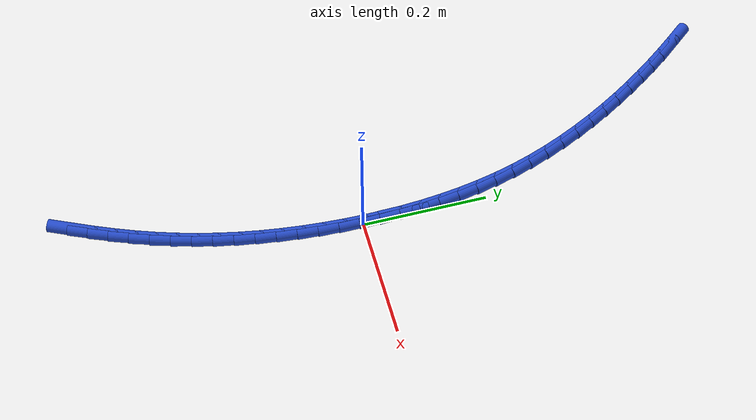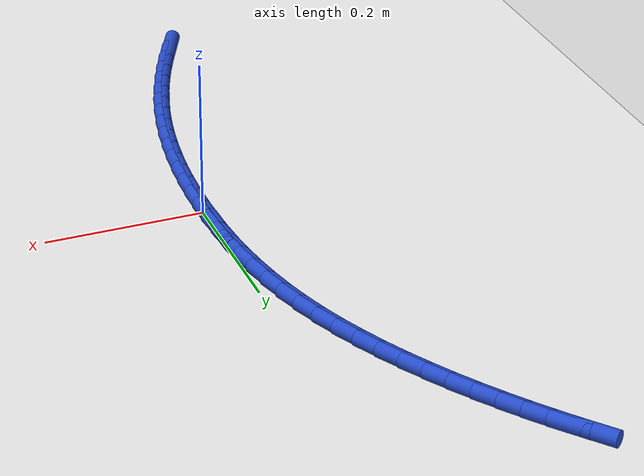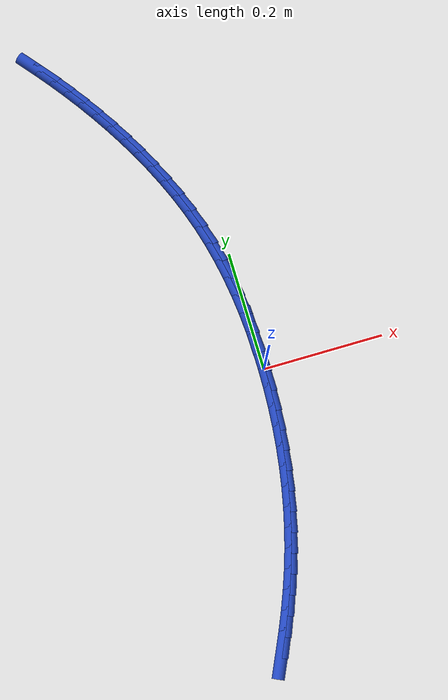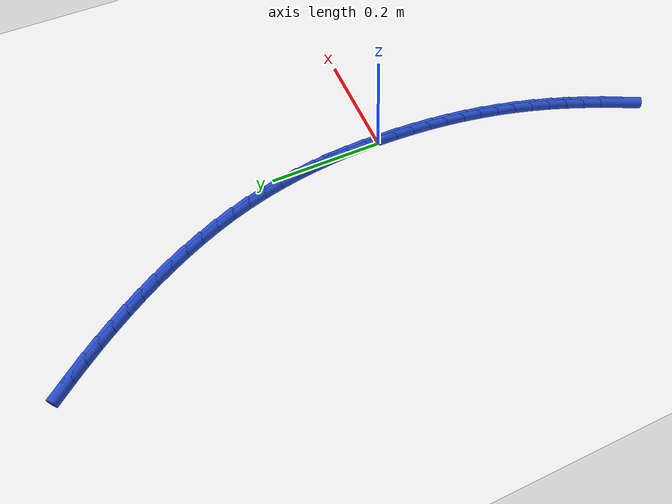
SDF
<sdf version="1.6">
 <world name="default">
  <model name="ground_plane">
   <static>1</static>
   <link name="link">
    <collision name="collision">
     <geometry><plane><normal>0 0 1</normal><size>100 100</size></plane></geometry>
     <surface><friction><ode><mu>100</mu><mu2>50</mu2></ode></friction></surface>
    </collision>
    <visual name="visual">
     <cast_shadows>0</cast_shadows>
     <geometry><plane><normal>0 0 1</normal><size>100 100</size></plane></geometry>
     <material>
      <script><uri>file://media/materials/scripts/gazebo.material</uri><name>Gazebo/WhiteGlow</name></script>
     </material>
    </visual>
   </link>
  </model>
  <model name="line">
   <link name="link_0">
    <pose>1.8648277366750676e-17 3.469446951953614e-17 0.01 0 1.57 -1.5646890484324265</pose>
    <collision name="collision">
     <geometry><cylinder><radius>0.01</radius><length>0.08</length></cylinder></geometry>
    </collision>
    <visual name="visual">
     <material>
      <script><name>Gazebo/Blue</name><uri>file://media/materials/scripts/gazebo.material</uri></script>
     </material>
     <geometry><cylinder><radius>0.01</radius><length>0.08</length></cylinder></geometry>
    </visual>
   </link>
   <link name="link_1">
    <pose>-0.00019860160442303806 0.0325184351238313 0.01 0 1.57 -1.5344394550884923</pose>
    <collision name="collision">
     <geometry><cylinder><radius>0.01</radius><length>0.08</length></cylinder></geometry>
    </collision>
    <visual name="visual">
     <material>
      <script><name>Gazebo/Blue</name><uri>file://media/materials/scripts/gazebo.material</uri></script>
     </material>
     <geometry><cylinder><radius>0.01</radius><length>0.08</length></cylinder></geometry>
    </visual>
   </link>
   <link name="link_2">
    <pose>-0.0013794902095978414 0.06498460164728793 0.01 0 1.57 -1.501908289368997</pose>
    <collision name="collision">
     <geometry><cylinder><radius>0.01</radius><length>0.08</length></cylinder></geometry>
    </collision>
    <visual name="visual">
     <material>
      <script><name>Gazebo/Blue</name><uri>file://media/materials/scripts/gazebo.material</uri></script>
     </material>
     <geometry><cylinder><radius>0.01</radius><length>0.08</length></cylinder></geometry>
    </visual>
   </link>
   <link name="link_3">
    <pose>-0.0036135487231357694 0.09736356792599889 0.01 0 1.57 -1.467064574801126</pose>
    <collision name="collision">
     <geometry><cylinder><radius>0.01</radius><length>0.08</length></cylinder></geometry>
    </collision>
    <visual name="visual">
     <material>
      <script><name>Gazebo/Blue</name><uri>file://media/materials/scripts/gazebo.material</uri></script>
     </material>
     <geometry><cylinder><radius>0.01</radius><length>0.08</length></cylinder></geometry>
    </visual>
   </link>
   <link name="link_4">
    <pose>-0.006971660052648199 0.129620402315593 0.01 0 1.57 -1.4298957388029947</pose>
    <collision name="collision">
     <geometry><cylinder><radius>0.01</radius><length>0.08</length></cylinder></geometry>
    </collision>
    <visual name="visual">
     <material>
      <script><name>Gazebo/Blue</name><uri>file://media/materials/scripts/gazebo.material</uri></script>
     </material>
     <geometry><cylinder><radius>0.01</radius><length>0.08</length></cylinder></geometry>
    </visual>
   </link>
   <link name="link_5">
    <pose>-0.011524707105746514 0.1617201731716993 0.01 0 1.57 -1.390413431423118</pose>
    <collision name="collision">
     <geometry><cylinder><radius>0.01</radius><length>0.08</length></cylinder></geometry>
    </collision>
    <visual name="visual">
     <material>
      <script><name>Gazebo/Blue</name><uri>file://media/materials/scripts/gazebo.material</uri></script>
     </material>
     <geometry><cylinder><radius>0.01</radius><length>0.08</length></cylinder></geometry>
    </visual>
   </link>
   <link name="link_6">
    <pose>-0.0173435727900421 0.1936279488499467 0.01 0 1.57 -1.348659549688114</pose>
    <collision name="collision">
     <geometry><cylinder><radius>0.01</radius><length>0.08</length></cylinder></geometry>
    </collision>
    <visual name="visual">
     <material>
      <script><name>Gazebo/Blue</name><uri>file://media/materials/scripts/gazebo.material</uri></script>
     </material>
     <geometry><cylinder><radius>0.01</radius><length>0.08</length></cylinder></geometry>
    </visual>
   </link>
   <link name="link_7">
    <pose>-0.02449914001314632 0.22530879770596393 0.01 0 1.57 -1.3047120747888163</pose>
    <collision name="collision">
     <geometry><cylinder><radius>0.01</radius><length>0.08</length></cylinder></geometry>
    </collision>
    <visual name="visual">
     <material>
      <script><name>Gazebo/Blue</name><uri>file://media/materials/scripts/gazebo.material</uri></script>
     </material>
     <geometry><cylinder><radius>0.01</radius><length>0.08</length></cylinder></geometry>
    </visual>
   </link>
   <link name="link_8">
    <pose>-0.03306229168267055 0.25672778809538 0.01 0 1.57 -1.2588783790772593</pose>
    <collision name="collision">
     <geometry><cylinder><radius>0.01</radius><length>0.08</length></cylinder></geometry>
    </collision>
    <visual name="visual">
     <material>
      <script><name>Gazebo/Blue</name><uri>file://media/materials/scripts/gazebo.material</uri></script>
     </material>
     <geometry><cylinder><radius>0.01</radius><length>0.08</length></cylinder></geometry>
    </visual>
   </link>
   <link name="link_9">
    <pose>-0.043097020539630666 0.28784867324278146 0.01 0 1.57 -1.2142455145818372</pose>
    <collision name="collision">
     <geometry><cylinder><radius>0.01</radius><length>0.08</length></cylinder></geometry>
    </collision>
    <visual name="visual">
     <material>
      <script><name>Gazebo/Blue</name><uri>file://media/materials/scripts/gazebo.material</uri></script>
     </material>
     <geometry><cylinder><radius>0.01</radius><length>0.08</length></cylinder></geometry>
    </visual>
   </link>
   <link name="link_10">
    <pose>-0.05455618170591943 0.31861399345564073 0.01 0 1.57 -1.173005085906663</pose>
    <collision name="collision">
     <geometry><cylinder><radius>0.01</radius><length>0.08</length></cylinder></geometry>
    </collision>
    <visual name="visual">
     <material>
      <script><name>Gazebo/Blue</name><uri>file://media/materials/scripts/gazebo.material</uri></script>
     </material>
     <geometry><cylinder><radius>0.01</radius><length>0.08</length></cylinder></geometry>
    </visual>
   </link>
   <link name="link_11">
    <pose>-0.06730276814858971 0.3489491369874513 0.01 0 1.57 -1.1348899125507856</pose>
    <collision name="collision">
     <geometry><cylinder><radius>0.01</radius><length>0.08</length></cylinder></geometry>
    </collision>
    <visual name="visual">
     <material>
      <script><name>Gazebo/Blue</name><uri>file://media/materials/scripts/gazebo.material</uri></script>
     </material>
     <geometry><cylinder><radius>0.01</radius><length>0.08</length></cylinder></geometry>
    </visual>
   </link>
   <link name="link_12">
    <pose>-0.08119719808007285 0.3787790006464445 0.01 0 1.57 -1.09957542725149</pose>
    <collision name="collision">
     <geometry><cylinder><radius>0.01</radius><length>0.08</length></cylinder></geometry>
    </collision>
    <visual name="visual">
     <material>
      <script><name>Gazebo/Blue</name><uri>file://media/materials/scripts/gazebo.material</uri></script>
     </material>
     <geometry><cylinder><radius>0.01</radius><length>0.08</length></cylinder></geometry>
    </visual>
   </link>
   <link name="link_13">
    <pose>-0.09609988971280017 0.4080284812408514 0.01 0 1.57 -1.0667543839531997</pose>
    <collision name="collision">
     <geometry><cylinder><radius>0.01</radius><length>0.08</length></cylinder></geometry>
    </collision>
    <visual name="visual">
     <material>
      <script><name>Gazebo/Blue</name><uri>file://media/materials/scripts/gazebo.material</uri></script>
     </material>
     <geometry><cylinder><radius>0.01</radius><length>0.08</length></cylinder></geometry>
    </visual>
   </link>
   <link name="link_14">
    <pose>-0.11187126125920314 0.4366224755789035 0.01 0 1.57 -1.0361382040050333</pose>
    <collision name="collision">
     <geometry><cylinder><radius>0.01</radius><length>0.08</length></cylinder></geometry>
    </collision>
    <visual name="visual">
     <material>
      <script><name>Gazebo/Blue</name><uri>file://media/materials/scripts/gazebo.material</uri></script>
     </material>
     <geometry><cylinder><radius>0.01</radius><length>0.08</length></cylinder></geometry>
    </visual>
   </link>
   <link name="link_15">
    <pose>-0.12837173093171306 0.4644858804688318 0.01 0 1.57 -1.0074561668402926</pose>
    <collision name="collision">
     <geometry><cylinder><radius>0.01</radius><length>0.08</length></cylinder></geometry>
    </collision>
    <visual name="visual">
     <material>
      <script><name>Gazebo/Blue</name><uri>file://media/materials/scripts/gazebo.material</uri></script>
     </material>
     <geometry><cylinder><radius>0.01</radius><length>0.08</length></cylinder></geometry>
    </visual>
   </link>
   <link name="link_16">
    <pose>-0.1454617169427613 0.49154359271886755 0.01 0 1.57 -0.9804530227655115</pose>
    <collision name="collision">
     <geometry><cylinder><radius>0.01</radius><length>0.08</length></cylinder></geometry>
    </collision>
    <visual name="visual">
     <material>
      <script><name>Gazebo/Blue</name><uri>file://media/materials/scripts/gazebo.material</uri></script>
     </material>
     <geometry><cylinder><radius>0.01</radius><length>0.08</length></cylinder></geometry>
    </visual>
   </link>
   <link name="link_17">
    <pose>-0.1630016375047793 0.5177205091372424 0.01 0 1.57 -0.9549056445679797</pose>
    <collision name="collision">
     <geometry><cylinder><radius>0.01</radius><length>0.08</length></cylinder></geometry>
    </collision>
    <visual name="visual">
     <material>
      <script><name>Gazebo/Blue</name><uri>file://media/materials/scripts/gazebo.material</uri></script>
     </material>
     <geometry><cylinder><radius>0.01</radius><length>0.08</length></cylinder></geometry>
    </visual>
   </link>
   <link name="link_18">
    <pose>-0.18085951757300536 0.5429533607634174 0.01 0 1.57 -0.9309606497154502</pose>
    <collision name="collision">
     <geometry><cylinder><radius>0.01</radius><length>0.08</length></cylinder></geometry>
    </collision>
    <visual name="visual">
     <material>
      <script><name>Gazebo/Blue</name><uri>file://media/materials/scripts/gazebo.material</uri></script>
     </material>
     <geometry><cylinder><radius>0.01</radius><length>0.08</length></cylinder></geometry>
    </visual>
   </link>
   <link name="link_19">
    <pose>-0.19898627697838736 0.5673078427877206 0.01 0 1.57 -0.9090793045670862</pose>
    <collision name="collision">
     <geometry><cylinder><radius>0.01</radius><length>0.08</length></cylinder></geometry>
    </collision>
    <visual name="visual">
     <material>
      <script><name>Gazebo/Blue</name><uri>file://media/materials/scripts/gazebo.material</uri></script>
     </material>
     <geometry><cylinder><radius>0.01</radius><length>0.08</length></cylinder></geometry>
    </visual>
   </link>
   <link name="link_20">
    <pose>-0.2173838007001097 0.5909289397052757 0.01 0 1.57 -0.8896338132908254</pose>
    <collision name="collision">
     <geometry><cylinder><radius>0.01</radius><length>0.08</length></cylinder></geometry>
    </collision>
    <visual name="visual">
     <material>
      <script><name>Gazebo/Blue</name><uri>file://media/materials/scripts/gazebo.material</uri></script>
     </material>
     <geometry><cylinder><radius>0.01</radius><length>0.08</length></cylinder></geometry>
    </visual>
   </link>
   <link name="link_216">
    <pose>-0.10225621027489534 -0.4375667167518572 0.01 0 1.57 1.1314100511622054</pose>
    <collision name="collision">
     <geometry><cylinder><radius>0.01</radius><length>0.08</length></cylinder></geometry>
    </collision>
    <visual name="visual">
     <material>
      <script><name>Gazebo/Blue</name><uri>file://media/materials/scripts/gazebo.material</uri></script>
     </material>
     <geometry><cylinder><radius>0.01</radius><length>0.08</length></cylinder></geometry>
    </visual>
   </link>
   <link name="link_217">
    <pose>-0.08845395639200737 -0.40820215575298263 0.01 0 1.57 1.159059341836068</pose>
    <collision name="collision">
     <geometry><cylinder><radius>0.01</radius><length>0.08</length></cylinder></geometry>
    </collision>
    <visual name="visual">
     <material>
      <script><name>Gazebo/Blue</name><uri>file://media/materials/scripts/gazebo.material</uri></script>
     </material>
     <geometry><cylinder><radius>0.01</radius><length>0.08</length></cylinder></geometry>
    </visual>
   </link>
   <link name="link_218">
    <pose>-0.07550999115970063 -0.37856160572832875 0.01 0 1.57 1.1888012973425337</pose>
    <collision name="collision">
     <geometry><cylinder><radius>0.01</radius><length>0.08</length></cylinder></geometry>
    </collision>
    <visual name="visual">
     <material>
      <script><name>Gazebo/Blue</name><uri>file://media/materials/scripts/gazebo.material</uri></script>
     </material>
     <geometry><cylinder><radius>0.01</radius><length>0.08</length></cylinder></geometry>
    </visual>
   </link>
   <link name="link_219">
    <pose>-0.0634824961881412 -0.34862219658220694 0.01 0 1.57 1.2206019786992903</pose>
    <collision name="collision">
     <geometry><cylinder><radius>0.01</radius><length>0.08</length></cylinder></geometry>
    </collision>
    <visual name="visual">
     <material>
      <script><name>Gazebo/Blue</name><uri>file://media/materials/scripts/gazebo.material</uri></script>
     </material>
     <geometry><cylinder><radius>0.01</radius><length>0.08</length></cylinder></geometry>
    </visual>
   </link>
   <link name="link_220">
    <pose>-0.05242965308749608 -0.3183610582189308 0.01 0 1.57 1.254404359170187</pose>
    <collision name="collision">
     <geometry><cylinder><radius>0.01</radius><length>0.08</length></cylinder></geometry>
    </collision>
    <visual name="visual">
     <material>
      <script><name>Gazebo/Blue</name><uri>file://media/materials/scripts/gazebo.material</uri></script>
     </material>
     <geometry><cylinder><radius>0.01</radius><length>0.08</length></cylinder></geometry>
    </visual>
   </link>
   <link name="link_221">
    <pose>-0.04240964346793133 -0.2877553205428118 0.01 0 1.57 1.290087220610342</pose>
    <collision name="collision">
     <geometry><cylinder><radius>0.01</radius><length>0.08</length></cylinder></geometry>
    </collision>
    <visual name="visual">
     <material>
      <script><name>Gazebo/Blue</name><uri>file://media/materials/scripts/gazebo.material</uri></script>
     </material>
     <geometry><cylinder><radius>0.01</radius><length>0.08</length></cylinder></geometry>
    </visual>
   </link>
   <link name="link_222">
    <pose>-0.0334796270157737 -0.2567829717448776 0.01 0 1.57 1.3262449977915385</pose>
    <collision name="collision">
     <geometry><cylinder><radius>0.01</radius><length>0.08</length></cylinder></geometry>
    </collision>
    <visual name="visual">
     <material>
      <script><name>Gazebo/Blue</name><uri>file://media/materials/scripts/gazebo.material</uri></script>
     </material>
     <geometry><cylinder><radius>0.01</radius><length>0.08</length></cylinder></geometry>
    </visual>
   </link>
   <link name="link_223">
    <pose>-0.02566109699789762 -0.22545195529542567 0.01 0 1.57 1.3612548121483645</pose>
    <collision name="collision">
     <geometry><cylinder><radius>0.01</radius><length>0.08</length></cylinder></geometry>
    </collision>
    <visual name="visual">
     <material>
      <script><name>Gazebo/Blue</name><uri>file://media/materials/scripts/gazebo.material</uri></script>
     </material>
     <geometry><cylinder><radius>0.01</radius><length>0.08</length></cylinder></geometry>
    </visual>
   </link>
   <link name="link_224">
    <pose>-0.018931435999127284 -0.1938072620561097 0.01 0 1.57 1.3950674404880559</pose>
    <collision name="collision">
     <geometry><cylinder><radius>0.01</radius><length>0.08</length></cylinder></geometry>
    </collision>
    <visual name="visual">
     <material>
      <script><name>Gazebo/Blue</name><uri>file://media/materials/scripts/gazebo.material</uri></script>
     </material>
     <geometry><cylinder><radius>0.01</radius><length>0.08</length></cylinder></geometry>
    </visual>
   </link>
   <link name="link_225">
    <pose>-0.013265291887181735 -0.16189617970491024 0.01 0 1.57 1.4277418597668077</pose>
    <collision name="collision">
     <geometry><cylinder><radius>0.01</radius><length>0.08</length></cylinder></geometry>
    </collision>
    <visual name="visual">
     <material>
      <script><name>Gazebo/Blue</name><uri>file://media/materials/scripts/gazebo.material</uri></script>
     </material>
     <geometry><cylinder><radius>0.01</radius><length>0.08</length></cylinder></geometry>
    </visual>
   </link>
   <link name="link_226">
    <pose>-0.00863731252978024 -0.1297659959198084 0.01 0 1.57 1.4593423790888358</pose>
    <collision name="collision">
     <geometry><cylinder><radius>0.01</radius><length>0.08</length></cylinder></geometry>
    </collision>
    <visual name="visual">
     <material>
      <script><name>Gazebo/Blue</name><uri>file://media/materials/scripts/gazebo.material</uri></script>
     </material>
     <geometry><cylinder><radius>0.01</radius><length>0.08</length></cylinder></geometry>
    </visual>
   </link>
   <link name="link_227">
    <pose>-0.005022145794642055 -0.09746399837878536 0.01 0 1.57 1.489937306207784</pose>
    <collision name="collision">
     <geometry><cylinder><radius>0.01</radius><length>0.08</length></cylinder></geometry>
    </collision>
    <visual name="visual">
     <material>
      <script><name>Gazebo/Blue</name><uri>file://media/materials/scripts/gazebo.material</uri></script>
     </material>
     <geometry><cylinder><radius>0.01</radius><length>0.08</length></cylinder></geometry>
    </visual>
   </link>
   <link name="link_228">
    <pose>-0.00239443954948639 -0.06503747475982147 0.01 0 1.57 1.5195978747983792</pose>
    <collision name="collision">
     <geometry><cylinder><radius>0.01</radius><length>0.08</length></cylinder></geometry>
    </collision>
    <visual name="visual">
     <material>
      <script><name>Gazebo/Blue</name><uri>file://media/materials/scripts/gazebo.material</uri></script>
     </material>
     <geometry><cylinder><radius>0.01</radius><length>0.08</length></cylinder></geometry>
    </visual>
   </link>
   <link name="link_229">
    <pose>-0.0007288416620326393 -0.0325337127408996 0.01 0 1.57 1.548397414798492</pose>
    <collision name="collision">
     <geometry><cylinder><radius>0.01</radius><length>0.08</length></cylinder></geometry>
    </collision>
    <visual name="visual">
     <material>
      <script><name>Gazebo/Blue</name><uri>file://media/materials/scripts/gazebo.material</uri></script>
     </material>
     <geometry><cylinder><radius>0.01</radius><length>0.08</length></cylinder></geometry>
    </visual>
   </link>
   <link name="link_230">
    <pose>1.8648277366750676e-17 -3.469446951953614e-17 0.01 0 1.57 -1.5651819091831003</pose>
    <collision name="collision">
     <geometry><cylinder><radius>0.01</radius><length>0.08</length></cylinder></geometry>
    </collision>
    <visual name="visual">
     <material>
      <script><name>Gazebo/Blue</name><uri>file://media/materials/scripts/gazebo.material</uri></script>
     </material>
     <geometry><cylinder><radius>0.01</radius><length>0.08</length></cylinder></geometry>
    </visual>
   </link>
   <link name="link_231">
    <pose>-0.00018256243110767803 0.03251637578489598 0.01 0 1.57 -1.5378788922091329</pose>
    <collision name="collision">
     <geometry><cylinder><radius>0.01</radius><length>0.08</length></cylinder></geometry>
    </collision>
    <visual name="visual">
     <material>
      <script><name>Gazebo/Blue</name><uri>file://media/materials/scripts/gazebo.material</uri></script>
     </material>
     <geometry><cylinder><radius>0.01</radius><length>0.08</length></cylinder></geometry>
    </visual>
   </link>
   <link name="link_232">
    <pose>-0.001251176823074995 0.06496812693580732 0.01 0 1.57 -1.5515403895145092</pose>
    <collision name="collision">
     <geometry><cylinder><radius>0.01</radius><length>0.08</length></cylinder></geometry>
    </collision>
    <visual name="visual">
     <material>
      <script><name>Gazebo/Blue</name><uri>file://media/materials/scripts/gazebo.material</uri></script>
     </material>
     <geometry><cylinder><radius>0.01</radius><length>0.08</length></cylinder></geometry>
    </visual>
   </link>
  </model>
 </world>
</sdf>
